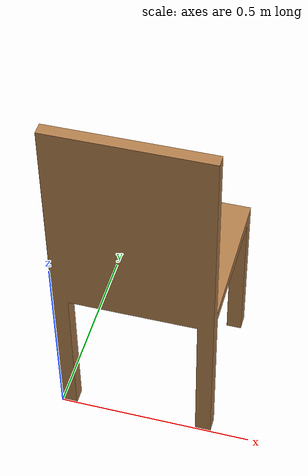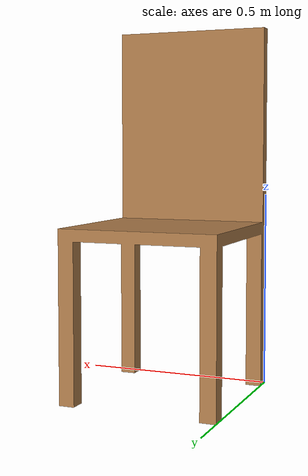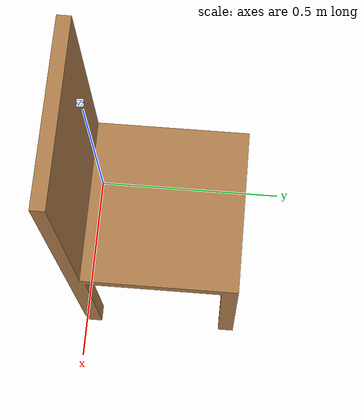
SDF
<?xml version="1.0" ?>

<sdf version="1.4">

  <model name="dining_chair">
    <static>1</static>
    <link name="link">

      <collision name="colision1">
        <pose>0 0 0 0 0 0</pose>
        <geometry>
          <mesh>
            <uri>model://dining_chair/meshes/dining_chair.stl</uri>
	    <scale> 1 1 1 </scale>
          </mesh>
        </geometry>
        <surface>
          <bounce />
          <friction>
            <ode />
          </friction>
          <contact>
            <ode />
          </contact>
        </surface>
      </collision>

      <visual name="visual1">
        <pose>0 0 0 0 0 0</pose>
        <geometry>
          <mesh>
            <uri>model://dining_chair/meshes/dining_chair.stl</uri>
	    <scale> 1 1 1 </scale>
          </mesh>
        </geometry>
        <material>
          <script>
            <uri>file://media/materials/scripts/gazebo.material</uri>
            <name>Gazebo/Wood</name>
          </script>
        </material>
      </visual>

      <velocity_decay>
        <linear>0.000000</linear>
        <angular>0.000000</angular>
      </velocity_decay>
      <self_collide>0</self_collide>
      <kinematic>0</kinematic>
      <gravity>1</gravity>
    </link>
  </model>
</sdf>
